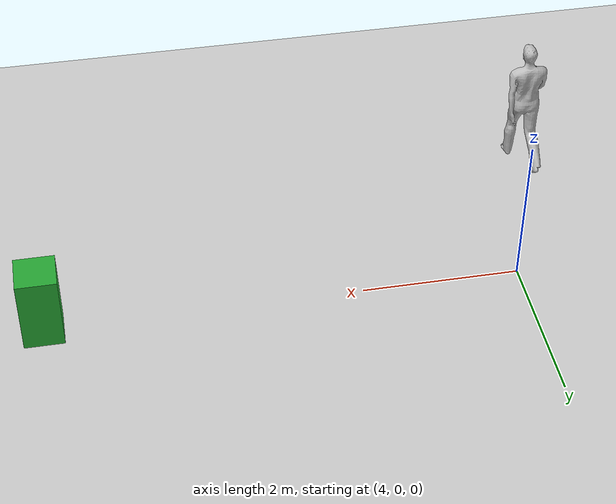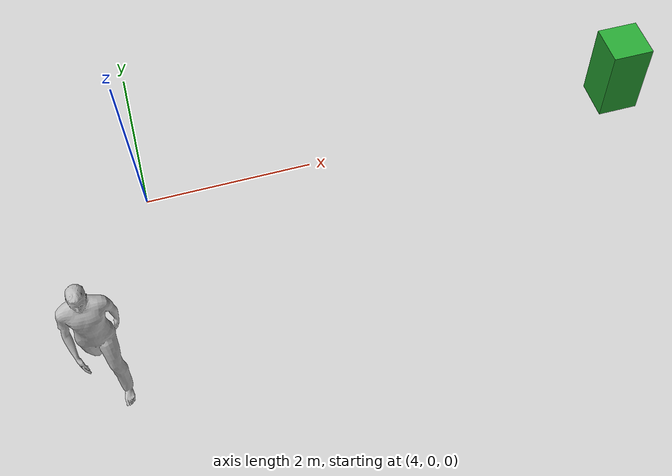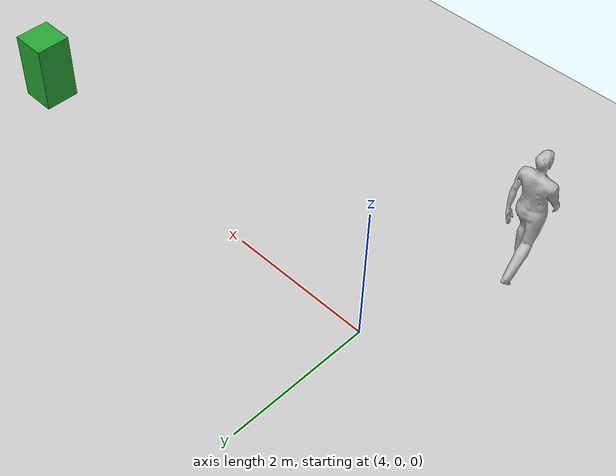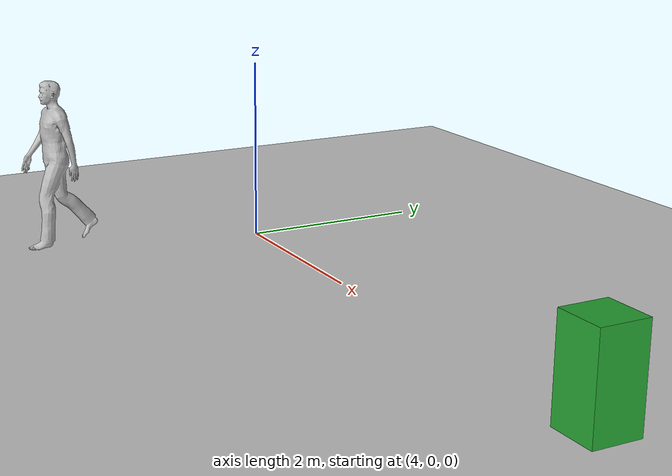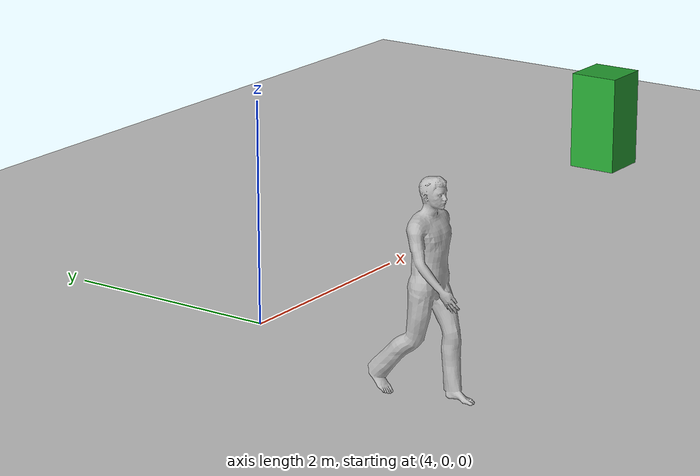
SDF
<sdf version="1.6">
 <world name="default">
  <light name="sun" type="directional">
   <pose>0 0 10 0 -0 0</pose>
   <diffuse>0.8 0.8 0.8 1</diffuse>
   <specular>0.1 0.1 0.1 1</specular>
   <attenuation>
    <range>1000</range>
    <constant>0.9</constant>
    <linear>0.01</linear>
    <quadratic>0.001</quadratic>
   </attenuation>
   <direction>-0.5 0.5 -1</direction>
  </light>
  <model name="ground_plane">
   <static>1</static>
   <link name="link">
    <collision name="collision">
     <geometry><plane><normal>0 0 1</normal><size>100 100</size></plane></geometry>
     <surface><friction><ode><mu>100</mu><mu2>50</mu2></ode></friction></surface>
    </collision>
    <visual name="visual">
     <cast_shadows>0</cast_shadows>
     <geometry><plane><normal>0 0 1</normal><size>100 100</size></plane></geometry>
     <material>
      <script><uri>file://media/materials/scripts/gazebo.material</uri><name>Gazebo/Grey</name></script>
     </material>
    </visual>
   </link>
  </model>
  <model name="custom_ground_plane_box">
   <pose>10 0 0.5 0 1e-06 0</pose>
   <link name="link">
    <inertial>
     <mass>100</mass>
     <inertia><ixx>3333.42</ixx><ixy>0</ixy><ixz>0</ixz><iyy>3333.42</iyy><iyz>0</iyz><izz>6666.67</izz></inertia>
    </inertial>
    <collision name="collision">
     <geometry><box><size>0.5 0.5 1</size></box></geometry>
     <surface><friction><ode><mu>0</mu><mu2>0</mu2></ode></friction></surface>
    </collision>
    <visual name="visual">
     <geometry><box><size>0.5 0.5 1</size></box></geometry>
     <material>
      <script><uri>file://media/materials/scripts/gazebo.material</uri><name>Gazebo/Green</name></script>
     </material>
    </visual>
   </link>
  </model>
  <gravity>0 0 -9.8</gravity>
  <magnetic_field>6e-06 2.3e-05 -4.2e-05</magnetic_field>
  <atmosphere type="adiabatic"/>
  <physics name="default_physics" default="0" type="ode">
   <max_step_size>0.001</max_step_size>
   <real_time_factor>1</real_time_factor>
   <real_time_update_rate>1000</real_time_update_rate>
  </physics>
  <scene><ambient>0.4 0.4 0.4 1</ambient><background>0.7 0.7 0.7 1</background><shadows>1</shadows></scene>
  <spherical_coordinates>
   <surface_model>EARTH_WGS84</surface_model>
   <latitude_deg>0</latitude_deg>
   <longitude_deg>0</longitude_deg>
   <elevation>0</elevation>
   <heading_deg>0</heading_deg>
  </spherical_coordinates>
  <model name="person_walking">
   <link name="link">
    <inertial>
     <pose>0 0 0.95 0 -0 0</pose>
     <mass>80</mass>
     <inertia><ixx>27.82</ixx><ixy>0</ixy><ixz>0</ixz><iyy>24.88</iyy><iyz>0</iyz><izz>4.57</izz></inertia>
    </inertial>
    <collision name="bottom">
     <pose>0 0 0.01 0 -0 0</pose>
     <geometry><box><size>0.35 0.75 0.02</size></box></geometry>
     <surface><friction><ode><mu>0</mu><mu2>0</mu2></ode></friction></surface>
    </collision>
    <collision name="person">
     <pose>0 0 -0.02 0 -0 0</pose>
     <geometry><mesh><uri>model://person_walking/meshes/walking.dae</uri><scale>1 1 1</scale></mesh></geometry>
    </collision>
    <visual name="visual">
     <pose>0 0 -0.02 0 -0 0</pose>
     <geometry><mesh><uri>model://person_walking/meshes/walking.dae</uri><scale>1 1 1</scale></mesh></geometry>
    </visual>
   </link>
   <pose>3.34481 -2.14424 -1e-06 -2e-06 1e-06 0.0003</pose>
   <plugin name="plannar_mover_plugin" filename="libplannar_mover_plugin.so"/>
  </model>
 </world>
</sdf>
